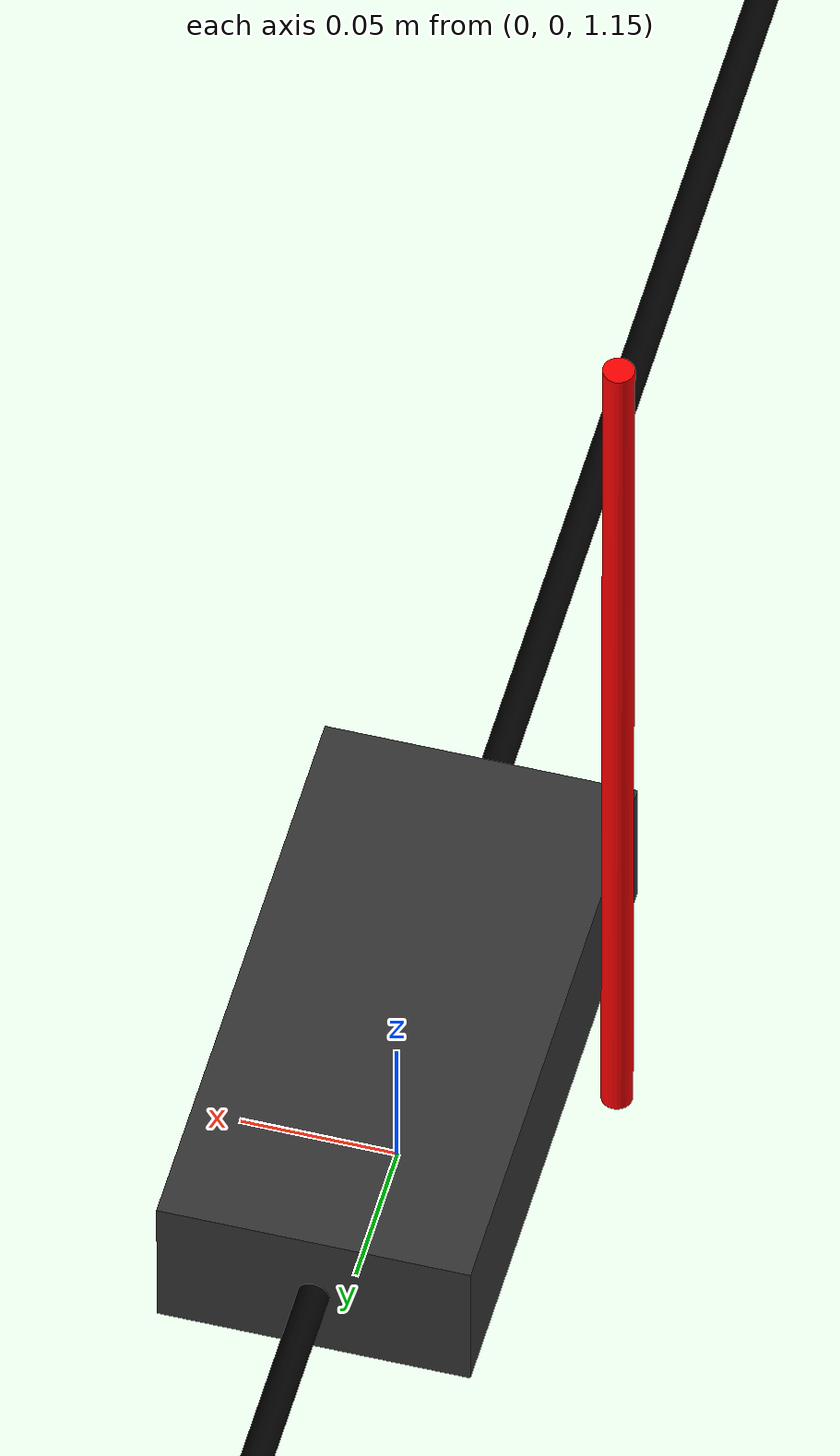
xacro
<?xml version='1.0' encoding='UTF-8'?>

<robot name="cartpole" xmlns:xacro="http://www.ros.org/wiki/xacro">

    <!-- VARIÁVEIS DE PROPRIEDADE (PROPERTIES)                      -->

    <!-- Propriedades do trilho (rail) -->
    <!-- O trilho é a base fixa sobre a qual o carrinho deslizará. -->
    <xacro:property name="rail_height" value="1.2"/>
    <xacro:property name="rail_length" value="50"/>
    <xacro:property name="rail_radius" value="0.005"/>
    <xacro:property name="rail_mass" value="15"/>

    <!-- Propriedades do carrinho (cart) -->
    <!-- O carrinho atua como a base móvel que sustentará e controlará o pêndulo. -->
    <xacro:property name="cart_size_x" value="0.1"/>
    <xacro:property name="cart_size_y" value="0.2"/>
    <xacro:property name="cart_size_z" value="0.05"/>
    <xacro:property name="cart_mass" value="2.0"/>

    <!-- Propriedades do pêndulo (pole) -->
    <!-- O pêndulo é a haste longa que deve ser mantida equilibrada pelo controle de esforço. -->
    <xacro:property name="pole_length" value="0.35"/>
    <xacro:property name="pole_radius" value="0.005"/>
    <xacro:property name="pole_mass" value="0.1"/>
    <xacro:property name="theta_0" value="0.0"/>

    <!-- Constante para evitar divisões por zero em cálculos matemáticos (Inércia) -->
    <xacro:property name="epsilon" value="1e-09"/>

    <!-- Definição de cores no padrão RGBA (Red, Green, Blue, Alpha) -->
    <xacro:property name="rgba_black" value="0 0 0 1"/>
    <xacro:property name="rgba_white" value="1 1 1 1"/>
    <xacro:property name="rgba_grey" value="0.2 0.2 0.2 1"/>
    <xacro:property name="rgba_red" value="1 0 0 1"/>

    <!-- MACROS (MACROS XACRO)                                      -->

    <xacro:macro name="box_inertia" params="mass dimx dimy dimz xyz rpy">
        <inertial>
            <origin xyz="${xyz}" rpy="${rpy}"/>
            <mass value="${mass}"/>
            <xacro:property name="ixx" value="${1/12*mass*(dimy*dimy+dimz*dimz)}"/>
            <xacro:property name="iyy" value="${1/12*mass*(dimx*dimx+dimz*dimz)}"/>
            <xacro:property name="izz" value="${1/12*mass*(dimx*dimx+dimy*dimy)}"/>
            <inertia ixx="${ixx}" ixy="0" ixz="0" iyy="${iyy}" iyz="0" izz="${izz}"/>
        </inertial>
    </xacro:macro>

    <xacro:macro name="cylinder_inertial_element"
                 params="mass length radius xyz rpy">
        <inertial>
            <origin xyz="${xyz}" rpy="${rpy}"/>
            <mass value="${mass}"/>
            <xacro:property name="ixx"
                            value="${1/12*mass*(3*radius*radius+length*length)}"/>
            <xacro:property name="iyy"
                            value="${1/12*mass*(3*radius*radius+length*length)}"/>
            <xacro:property name="izz" value="${0.5*mass*radius*radius}"/>
            <inertia ixx="${ixx}" ixy="0" ixz="0" iyy="${iyy}" iyz="0" izz="${izz}"/>
        </inertial>
    </xacro:macro>

    <!--
        Macro: mymaterial
        Atribui uma cor (material visual genérico) de forma simplificada no URDF.
    -->
    <xacro:macro name="mymaterial" params="name rgba">
        <material name="${name}">
            <color rgba="${rgba}"/>
        </material>
    </xacro:macro>

    <!--
        Macro: gzmaterial
        Atribui material/cor de forma dedicada para o renderizador visual do Gazebo.
    -->
    <xacro:macro name="gzmaterial" params="reference rgba">
        <gazebo reference="${reference}">
            <visual>
                <material>
                    <diffuse>${rgba}</diffuse>
                </material>
            </visual>
        </gazebo>
    </xacro:macro>

    <!-- CORES (COLORS)                                             -->

    <!-- Materiais padrão do URDF base -->
    <material name="black">
        <color rgba="${rgba_black}"/>
    </material>
    <material name="white">
        <color rgba="${rgba_white}"/>
    </material>
    <material name="grey">
        <color rgba="${rgba_grey}"/>
    </material>

    <!-- Atribuição de cores específicas para exibição na engine física do Gazebo -->
    <xacro:gzmaterial reference="rail" rgba="${rgba_black}"/>
    <xacro:gzmaterial reference="cart" rgba="${rgba_grey}"/>
    <xacro:gzmaterial reference="pole" rgba="${rgba_red}"/>

    <!-- ELOS (LINKS)                                               -->

    <!-- Elo base referencial fixo (Mundo) -->
    <link name="world"/>

    <link name="rail">
        <xacro:cylinder_inertial_element mass="${rail_mass}"
                                         length="${rail_length}"
                                         radius="${rail_radius}"
                                         xyz="0 0 0"
                                         rpy="${pi/2} 0 0"/>
        <visual>
            <geometry>
                <cylinder length="${rail_length}" radius="${rail_radius}"/>
            </geometry>
            <origin xyz="0 0 0" rpy="${pi/2} 0 0"/>
            <xacro:mymaterial name="black" rgba="${rgba_black}"/>
        </visual>
    </link>

    <link name="cart">
        <xacro:box_inertia mass="${cart_mass}"
                           dimx="${cart_size_x}"
                           dimy="${cart_size_y}"
                           dimz="${cart_size_z}"
                           xyz="0 0 0"
                           rpy="0 0 0"/>
        <visual>
            <geometry>
                <box size="${cart_size_x} ${cart_size_y} ${cart_size_z}"/>
            </geometry>
            <origin xyz="0 0 0" rpy="0 0 0"/>
            <xacro:mymaterial name="grey" rgba="${rgba_grey}"/>
        </visual>
        <collision>
            <geometry>
                <box size="${cart_size_x} ${cart_size_y} ${cart_size_z}"/>
            </geometry>
            <origin xyz="0 0 0" rpy="0 0 0"/>
        </collision>
    </link>

    <!--
        Elo: pêndulo (pole)
        Cilindro longo e leve posicionado sobre o carrinho. Deslocado levemente em Z
        para coincidir seu centro de massa corretamente durante o giro.
    -->
    <link name="pole">
        <xacro:cylinder_inertial_element mass="${pole_mass}"
                                         length="${pole_length}"
                                         radius="${pole_radius}"
                                         xyz="0 0 -0.02"
                                         rpy="0 0 0"/>
        <visual>
            <geometry>
                <cylinder length="${pole_length}" radius="${pole_radius}"/>
            </geometry>
            <origin xyz="0 0 ${pole_length/2}" rpy="0 0 0"/>
            <xacro:mymaterial name="red" rgba="${rgba_red}"/>
        </visual>
        <collision>
            <geometry>
                <cylinder length="${pole_length}" radius="${pole_radius}"/>
            </geometry>
            <origin xyz="0 0 ${pole_length/2}" rpy="0 0 0"/>
            <xacro:mymaterial name="red" rgba="${rgba_red}"/>
        </collision>
    </link>

    <!-- JUNTAS (JOINTS)                                            -->

    <joint name="world_to_rail" type="fixed">
        <parent link="world"/>
        <child link="rail"/>
        <origin xyz="0 0 ${rail_height}" rpy="0 0 0"/>
    </joint>

    <joint name="linear" type="prismatic">
        <parent link="rail"/>
        <child link="cart"/>
        <axis xyz="0 1 0"/>
        <origin xyz="0 0 0" rpy="0 0 0"/>
        <limit lower="-${rail_length/2-cart_size_y/2}"
               upper="${rail_length/2-cart_size_y/2}" effort="2" velocity="1"/>
    </joint>

    <!--
        Junta Contínua: pivot
        Permite a rotação livre (sem restrições angulares) do pêndulo acoplado ao carrinho.
        O pêndulo gira infinitamente em torno do eixo X.
    -->
    <joint name="pivot" type="continuous">
        <parent link="cart"/>
        <child link="pole"/>
        <axis xyz="1 0 0"/>
        <origin xyz="-0.07 0 0" rpy="${theta_0} 0 0"/>
        <limit effort="50" velocity="15"/>
    </joint>

    <!-- CONFIGURAÇÃO DO ROS 2 CONTROL E GAZEBO                     -->

    <ros2_control name="IgnitionSystem" type="system">
        <hardware>
            <!-- Carrega o plugin do sistema de controle via ros2 para o Gazebo Ignition -->
            <plugin>ign_ros2_control/IgnitionSystem</plugin>
        </hardware>

        <!-- Mapeamento da junta linear (do carrinho) -->
        <joint name="linear">
            <!-- Habilita a escrita/comando por esforço dinâmico (Força Linear) -->
            <command_interface name="effort" />

            <!-- Interfaces de leitura de estado de sensores -->
            <state_interface name="position">
                <param name="initial_value">0.0</param>
            </state_interface>
            <state_interface name="velocity"/>
            <state_interface name="effort"/>
        </joint>

        <!-- Mapeamento da junta pivot (do pêndulo) -->
        <joint name="pivot">
            <!-- Habilita a escrita/comando por esforço dinâmico (Torque Angular) -->
            <command_interface name="effort" />

            <!-- Interfaces de leitura de estado de sensores -->
            <state_interface name="position">
                <param name="initial_value">0.0</param>
            </state_interface>
            <state_interface name="velocity"/>
            <state_interface name="effort"/>
        </joint>
    </ros2_control>

    <gazebo>
        <plugin filename="ign_ros2_control-system" name="ign_ros2_control::IgnitionROS2ControlPlugin">
        <parameters>$(find cartpole_description)/config/cartpole_controller.yaml</parameters>
        </plugin>
    </gazebo>

</robot>
